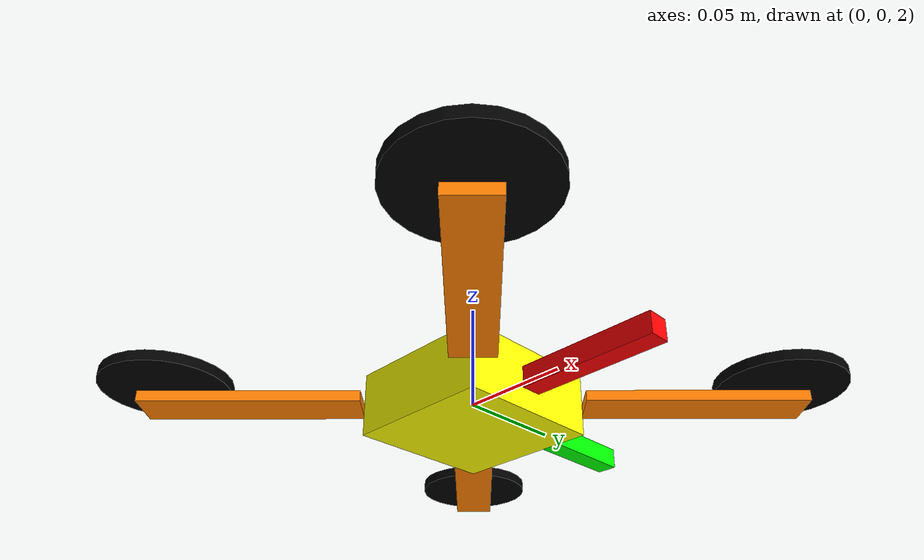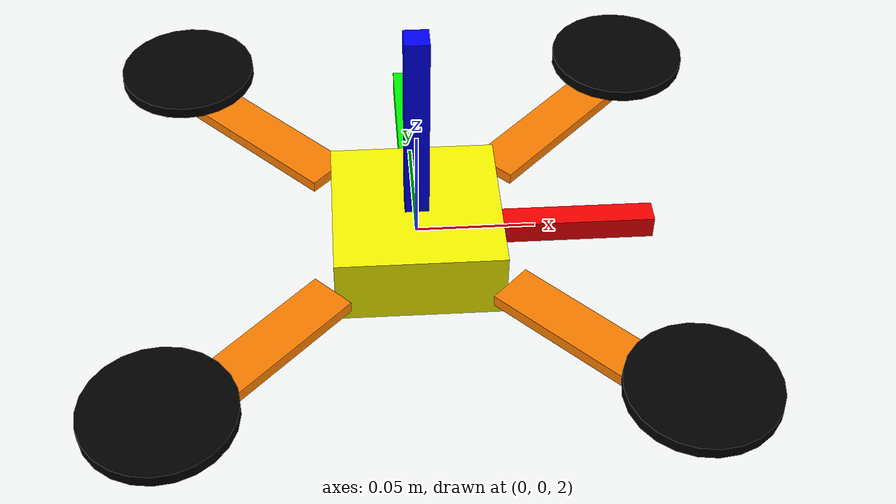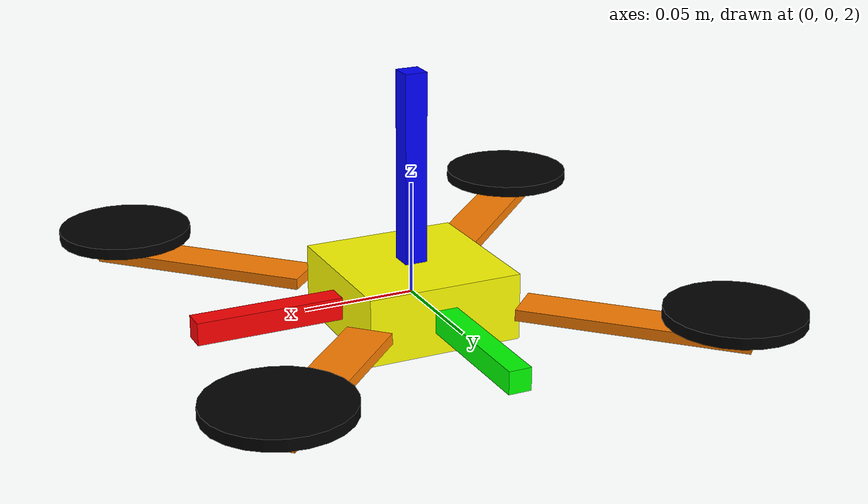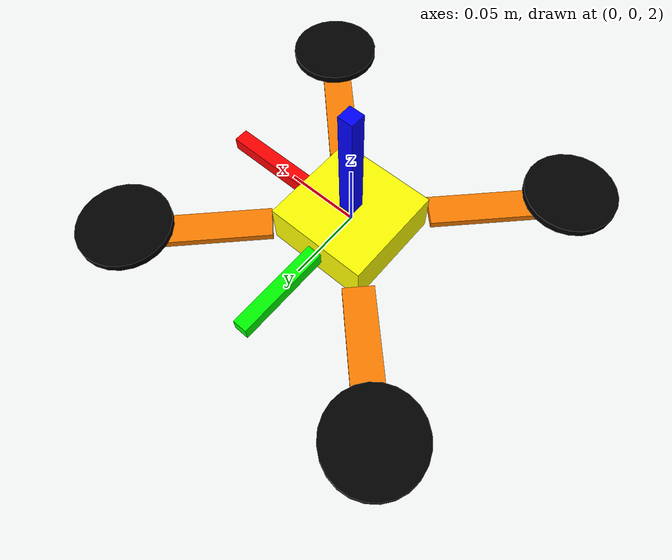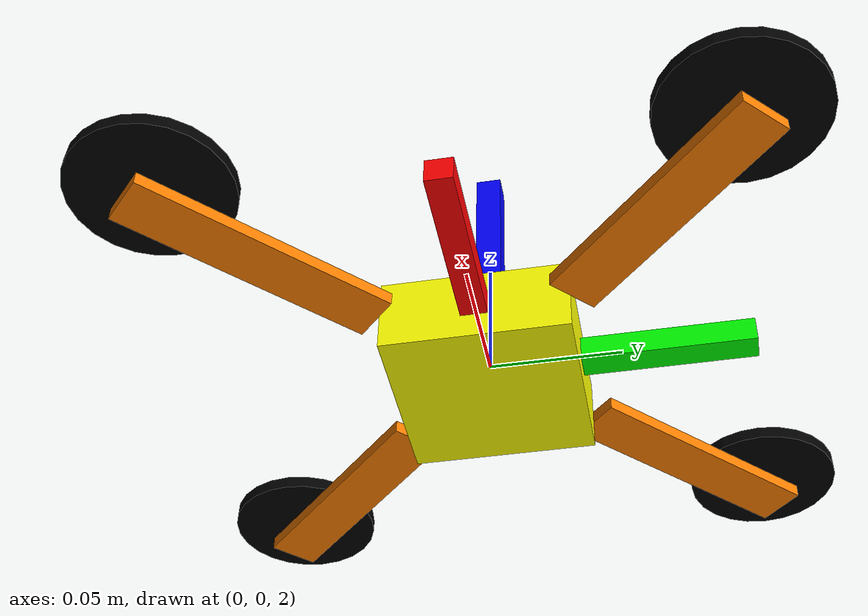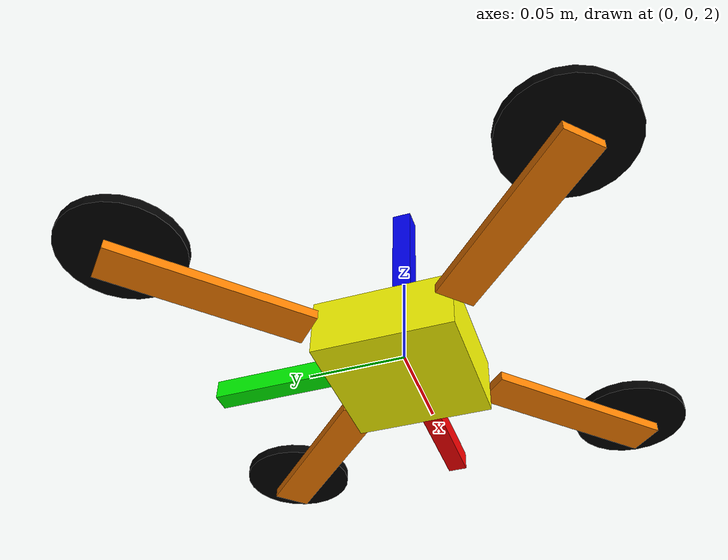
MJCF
<mujoco model="MuJoCo Model">
  <!--Compiler Options-->
  <compiler angle="radian"/>
  <option timestep="0.01" gravity="0 0 -9.81" density="1.225" viscosity="1.8e-05" integrator="RK4" jacobian="sparse">
    <flag energy="enable" contact="enable"/>
  </option>

<extension>
  <!-- Other plugins … (no configs on these if you don't need them) -->
  <plugin plugin="MujocoRosUtils::ClockPublisher"/>
  <plugin plugin="MujocoRosUtils::ImagePublisher"/>
  <plugin plugin="MujocoRosUtils::WrenchToActuators"/>
  <plugin plugin="MujocoRosUtils::OdometryPublisher"/>
</extension>

  <asset>
  <texture name="texchecker" type="2d" builtin="checker" width="512" height="512"
           rgb1="0.8 0.8 0.8" rgb2="0.2 0.2 0.2" />
  <material name="matchecker" texture="texchecker" texrepeat="4 4"
            reflectance="0.2" shininess="0.5" specular="0.3" />
  </asset>

  <worldbody>
    <light pos="0 0 1.5" dir="0 0 -1" directional="true"/>
    <geom name="floor" type="plane" size="20 20 0.1" material="matchecker"
      rgba="1 1 1 1" friction="1.0 0.005 0.0001" condim="3"/>

      <!--Quadrotor 0 -->
    <body name="drone_2" pos="0.0 0.0 2" euler="0 0 0">
      <joint name="drone_2" type="free" damping="0.001" armature="0" pos="0 0 0"/>

      <!-- Core: bright yellow for visibility -->
      <geom name="core" type="box" pos="0 0 0" quat="1. 0. 0. 0" size="0.035 0.035 0.015"
            rgba="1.0 1.0 0.0 1.0" mass=".84" friction="1.0 0.005 0.0001"/>

      <!-- Arms: bright orange -->
      <geom name="a00" type="box" pos=".071 0.071 0.0" size="0.05 0.01 0.0025"
            quat=".924 0.0 0.0 0.383" rgba="1.0 0.5 0.0 1.0" mass=".025"/>

      <geom name="a10" type="box" pos=".071 -0.071 0.0" size="0.05 0.01 0.0025"
            quat=".383 0.0 0.0 0.924" rgba="1.0 0.5 0.0 1.0" mass=".025"/>

      <geom name="a20" type="box" pos="-0.071 -0.071 0.0" size="0.05 0.01 0.0025"
            quat="-.383 0.0 0.0 0.924" rgba="1.0 0.5 0.0 1.0" mass=".025"/>

      <geom name="a30" type="box" pos="-.071 0.071 0.0" size="0.05 0.01 0.0025"
            quat=".924 0.0 0.0 -0.383" rgba="1.0 0.5 0.0 1.0" mass=".025"/>

      <!-- Thrusters: black for contrast -->
      <geom name="thruster00" type="cylinder" pos="0.1 0.1 0.01" size="0.03 0.0025"
            quat="1.0 0.0 0.0 0." rgba="0.0 0.0 0.0 1.0" mass=".015"/>
      <geom name="thruster10" type="cylinder" pos="0.1 -0.1 0.01" size="0.03 0.0025"
            quat="1.0 0.0 0.0 0." rgba="0.0 0.0 0.0 1.0" mass=".015"/>
      <geom name="thruster20" type="cylinder" pos="-0.1 -0.1 0.01" size="0.03 0.0025"
            quat="1.0 0.0 0.0 0." rgba="0.0 0.0 0.0 1.0" mass=".015"/>
      <geom name="thruster30" type="cylinder" pos="-0.1 0.1 0.01" size="0.03 0.0025"
            quat="1.0 0.0 0.0 0." rgba="0.0 0.0 0.0 1.0" mass=".015"/>

      <!-- Axes remain unchanged -->
      <site name="qcX" type="box" pos="0.05 0.0 0.0" size="0.05 0.005 0.005"
            quat="1.0 0.0 0.0 0." rgba="1 0 0 1"/>
      <site name="qcY" type="box" pos="0.0 0.05 0.0" size="0.05 0.005 0.005"
            quat="0.707 0.0 0.0 0.707" rgba="0 1 0 1"/>
      <site name="qcZ" type="box" pos="0.0 0.0 0.05" size="0.05 0.005 0.005"
            quat="-0.707 0.0 0.707 0." rgba="0 0 1 1"/>

      <!-- Actuator sites: bright cyan (unchanged) -->
      <site name="thrust" type="box" pos="0 0 0" size="0.035 0.035 0.015" quat="1.0 0.0 0.0 0." rgba="0 1 1 1"/>
      <site name="rateX" type="box" pos="0 0 0" quat="1. 0. 0. 0." size="0.035 0.035 0.015" rgba="0 1 1 1"/>
      <site name="rateY" type="box" pos="0 0 0" quat="1. 0. 0. 0." size="0.035 0.035 0.015" rgba="0 1 1 1"/>
      <site name="rateZ" type="box" pos="0 0 0" quat="1. 0. 0. 0." size="0.035 0.035 0.015" rgba="0 1 1 1"/>
      <site name="imu" pos="0 0 0"/>
      <camera name="camera_0" pos="0.035 0 -0.015" euler="0 0 -1.57"/>
    </body>
  </worldbody>

<actuator>
    <motor ctrllimited="true" ctrlrange="0 40.0" gear="0 0. 1. 0. 0. 0." site="thrust" name="body_thrust"/>
    <motor ctrllimited="true" ctrlrange="-0.5 0.5" gear="0. 0. 0. 1. 0. 0." site="rateX" name="x_moment"/>
    <motor ctrllimited="true" ctrlrange="-0.5 0.5" gear="0. 0. 0. 0. 1. 0." site="rateY" name="y_moment"/>
    <motor ctrllimited="true" ctrlrange="-0.5 0.5" gear="0. 0. 0. 0. 0. 1." site="rateZ" name="z_moment"/>

    <plugin name="SO3_ctrl_1" plugin="MujocoRosUtils::WrenchToActuators" joint="drone_2">
        <config key="actuator_fz"  value="body_thrust"/>
        <config key="actuator_tx"  value="x_moment"/>
        <config key="actuator_ty"  value="y_moment"/>
        <config key="actuator_tz"  value="z_moment"/>
        <config key="control_hz"   value="500"/>
    </plugin>
</actuator>

  <sensor>
    <plugin name="odom_publisher_drone_1" plugin="MujocoRosUtils::OdometryPublisher" objtype="xbody" objname="drone_2">
      <config key="frame_id" value="world"/>
      <config key="publish_rate" value="240"/>
    </plugin>
    <gyro name="drone_angular_velocity" site="imu" noise="0.01"/>
    <accelerometer name="drone_linacc" site="imu" noise="0.01"/>
  </sensor>
</mujoco>
